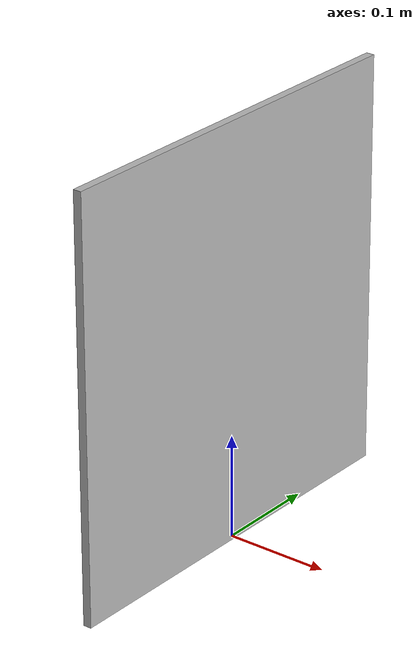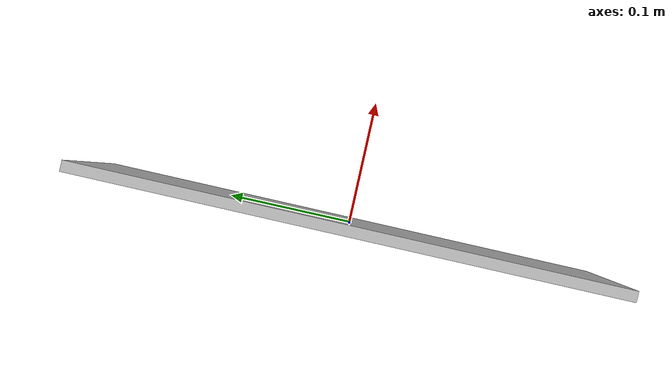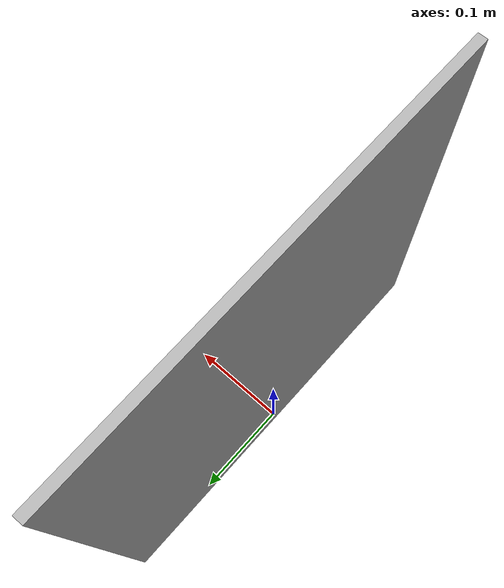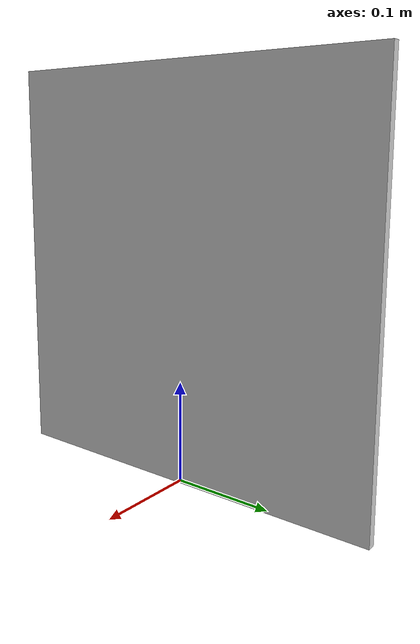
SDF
<?xml version="1.0" ?><sdf version="1.5">
  <model name="Marker12">
    <static>true</static>
    <link name="link">
      <visual name="visual">
        <geometry>
          <mesh>
            <uri>model://marker12/meshes/Marker12.dae</uri>
          <scale>0.8 0.8 0.8</scale></mesh>
        </geometry>
      </visual>
    </link>
  </model>
</sdf>
